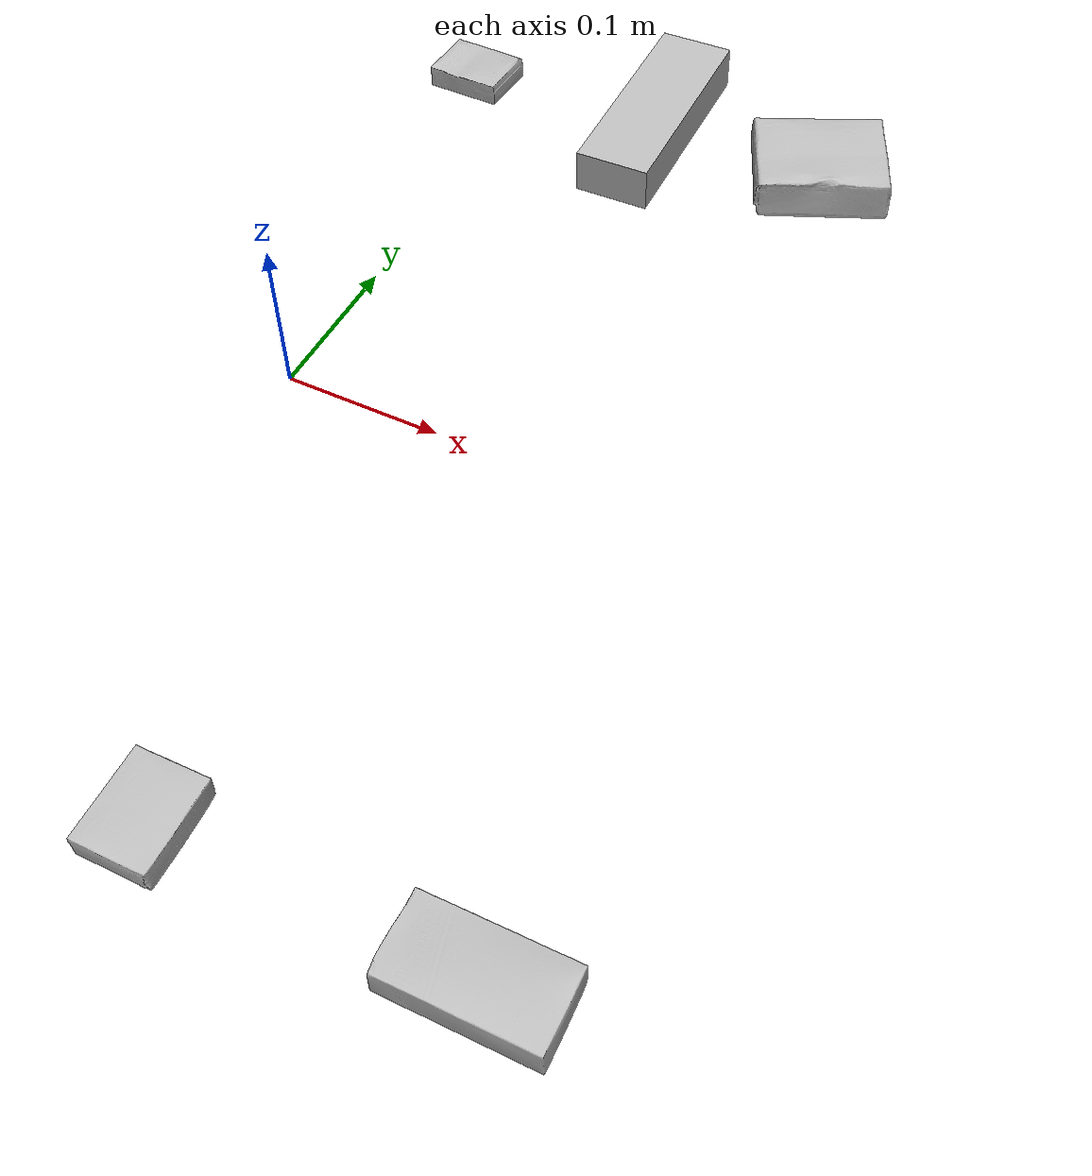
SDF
<?xml version="1.0" ?>
<sdf version="1.4">
  <world name="default">
    <light name="light1" type="point">
      <pose>0 0 1 0 0 0</pose>
      <diffuse>3 3 3 1</diffuse>
      <specular>3 3 3 1</specular>
    </light>
    <light name="light2" type="point">
      <pose>0 0.5 2 0 0 0</pose>
      <diffuse>1 1 1 1</diffuse>
      <specular>1 1 1 1</specular>
    </light>
    <light name="light3" type="point">
      <pose>0 0.5 2 0 0 0</pose>
      <diffuse>3 3 3 1</diffuse>
      <specular>3 3 3 1</specular>
    </light>
    <scene>
      <ambient>0.7 0.7 0.7</ambient>
    </scene>
    <model name="box1">
      <link name="link_box1">
        <collision name="default">
          <geometry>
            <mesh>
              <uri>model://sugar_box/collision_meshes/collision.obj</uri>
              <scale>0.5 0.5 0.5</scale>
            </mesh>
          </geometry>
          <surface>
            <friction>
              <ode>
                <mu>0.5</mu>
                <mu2>0.5</mu2>
              </ode>
            </friction>
          </surface>
        </collision>
        <visual name="default">
          <geometry>
            <mesh>
              <uri>model://sugar_box/visual_meshes/visual.dae</uri>
              <scale>0.5 0.5 0.5</scale>
            </mesh>
          </geometry>
        </visual>
        <inertial>
          <mass>0.050072960555553436</mass>
          <pose>0.0005171863595023751 1.924554817378521e-05 -0.00018182402709499002 -0.0004046260967901466 0.0010506635218491861 0.0026153785561980193</pose>
          <inertia>
            <ixx>1.0430162e-05</ixx>
            <iyy>3.371243e-05</iyy>
            <izz>4.0357794e-05</izz>
            <ixy>0</ixy>
            <ixz>0</ixz>
            <iyz>0</iyz>
          </inertia>
        </inertial>
      </link>
      <pose>0.2795228362083435 -0.28013351559638977 0.011399304494261742 0.0007749290438039891 -0.02343318022784319 0.0002344228987596266</pose>
    </model>
    <model name="box2">
      <link name="link_box2">
        <collision name="default">
          <geometry>
            <mesh>
              <uri>model://pudding_box/collision_meshes/collision.obj</uri>
              <scale>0.5 0.5 0.5</scale>
            </mesh>
          </geometry>
          <surface>
            <friction>
              <ode>
                <mu>0.5</mu>
                <mu2>0.5</mu2>
              </ode>
            </friction>
          </surface>
        </collision>
        <visual name="default">
          <geometry>
            <mesh>
              <uri>model://pudding_box/visual_meshes/visual.dae</uri>
              <scale>0.5 0.5 0.5</scale>
            </mesh>
          </geometry>
        </visual>
        <inertial>
          <mass>0.026034390553832054</mass>
          <pose>0.00024474109522998333 0.00040339428232982755 -0.0002594413817860186 0.005213101355963405 -0.006603798228586091 0.020079817710543634</pose>
          <inertia>
            <ixx>7.3576343e-06</ixx>
            <iyy>4.9502682e-06</iyy>
            <izz>1.086547e-05</izz>
            <ixy>0</ixy>
            <ixz>0</ixz>
            <iyz>0</iyz>
          </inertia>
        </inertial>
      </link>
      <pose>0.09974133968353271 -0.28025203943252563 0.009862903505563736 0.02234867407639381 -0.011391632224210543 -9.541393718375084e-05</pose>
    </model>
    <model name="box3">
      <link name="link_box3">
        <collision name="default">
          <geometry>
            <mesh>
              <uri>model://jenga/collision_meshes/collision.obj</uri>
              <scale>1.0 1.0 1.0</scale>
            </mesh>
          </geometry>
          <surface>
            <friction>
              <ode>
                <mu>0.5</mu>
                <mu2>0.5</mu2>
              </ode>
            </friction>
          </surface>
        </collision>
        <visual name="default">
          <geometry>
            <mesh>
              <uri>model://jenga/visual_meshes/visual.dae</uri>
              <scale>1.0 1.0 1.0</scale>
            </mesh>
          </geometry>
        </visual>
        <inertial>
          <mass>0.2076648771762848</mass>
          <pose>-2.502856091268768e-07 -0.00010250010382151231 -4.0923405322246253e-05 0.0 -7.34215461761844e-07 0.0</pose>
          <inertia>
            <ixx>5.746591e-05</ixx>
            <iyy>0.00038938745</iyy>
            <izz>0.0004157042</izz>
            <ixy>0</ixy>
            <ixz>0</ixz>
            <iyz>0</iyz>
          </inertia>
        </inertial>
      </link>
      <pose>0.09989750385284424 0.30999821424484253 0.014999995008111 8.83991070122804e-10 -4.137107717451916e-09 1.5929178837663471</pose>
    </model>
    <model name="box4">
      <link name="link_box4">
        <collision name="default">
          <geometry>
            <mesh>
              <uri>model://gelatin_box/collision_meshes/collision.obj</uri>
              <scale>1.0 1.0 1.0</scale>
            </mesh>
          </geometry>
          <surface>
            <friction>
              <ode>
                <mu>0.5</mu>
                <mu2>0.5</mu2>
              </ode>
            </friction>
          </surface>
        </collision>
        <visual name="default">
          <geometry>
            <mesh>
              <uri>model://gelatin_box/visual_meshes/visual.dae</uri>
              <scale>1.0 1.0 1.0</scale>
            </mesh>
          </geometry>
        </visual>
        <inertial>
          <mass>0.09577830880880356</mass>
          <pose>0.000431961816502735 0.00011156871187267825 -0.0003640321083366871 -0.0010503719862657887 -0.004755821487046037 0.01644055388468454</pose>
          <inertia>
            <ixx>6.761167e-05</ixx>
            <iyy>4.8294667e-05</iyy>
            <izz>0.00010292002</izz>
            <ixy>0</ixy>
            <ixz>0</ixz>
            <iyz>0</iyz>
          </inertia>
        </inertial>
      </link>
      <pose>0.21983982622623444 0.31002190709114075 0.015168316662311554 0.005597507280273912 -0.007304573497471882 -1.1629563646639547</pose>
    </model>
    <model name="box5">
      <link name="link_box5">
        <collision name="default">
          <geometry>
            <mesh>
              <uri>model://cracker_box/collision_meshes/collision.obj</uri>
              <scale>0.25 0.25 0.25</scale>
            </mesh>
          </geometry>
          <surface>
            <friction>
              <ode>
                <mu>0.5</mu>
                <mu2>0.5</mu2>
              </ode>
            </friction>
          </surface>
        </collision>
        <visual name="default">
          <geometry>
            <mesh>
              <uri>model://cracker_box/visual_meshes/visual.dae</uri>
              <scale>0.25 0.25 0.25</scale>
            </mesh>
          </geometry>
        </visual>
        <inertial>
          <mass>0.019404999911785126</mass>
          <pose>0.00023660343140363693 6.358561950037256e-05 -0.00042573839891701937 -0.00031620745436260704 -0.011106489600575076 0.0025467952338677235</pose>
          <inertia>
            <ixx>3.084854e-06</ixx>
            <iyy>5.093699e-06</iyy>
            <izz>7.269177e-06</izz>
            <ixy>0</ixy>
            <ixz>0</ixz>
            <iyz>0</iyz>
          </inertia>
        </inertial>
      </link>
      <pose>-0.040058646351099014 0.31015339493751526 0.009120450355112553 -0.01178883646257738 -0.007366469793989052 -0.052223709637799785</pose>
    </model>
  </world>
</sdf>
